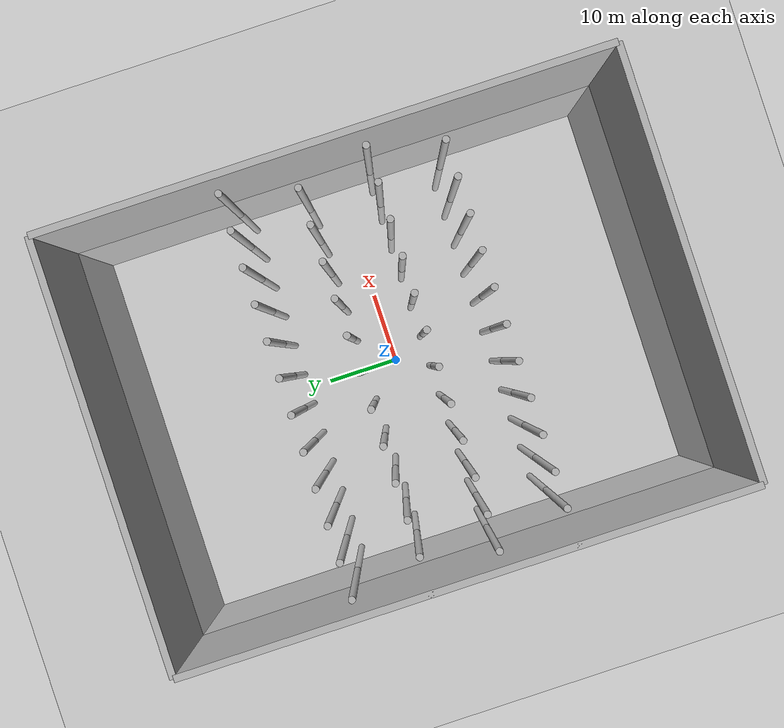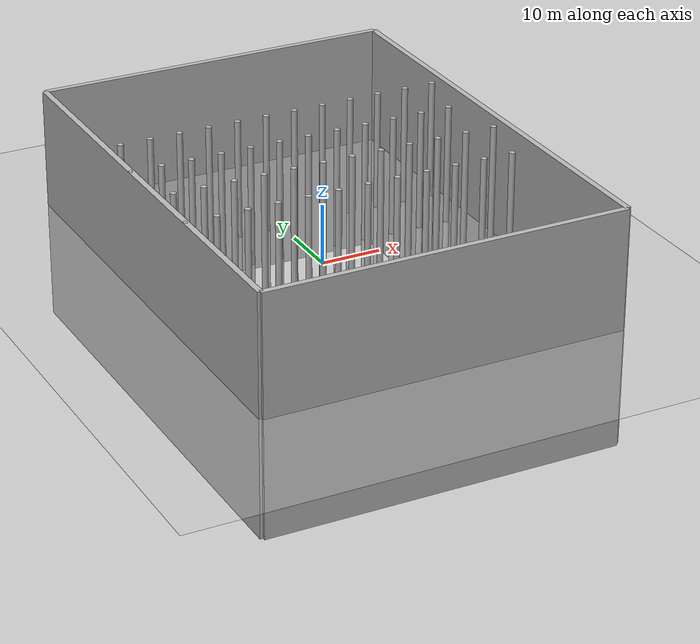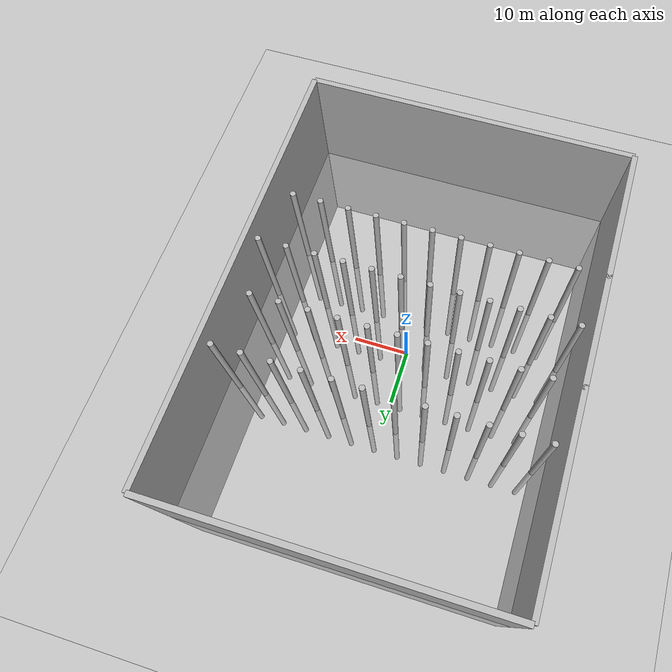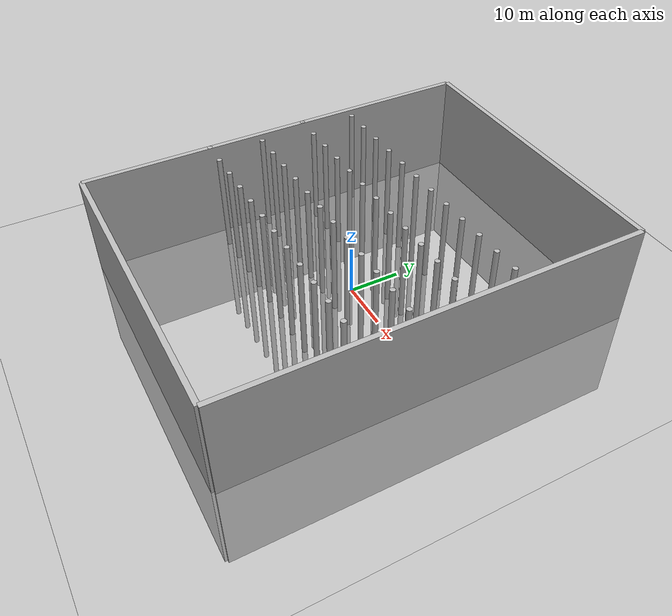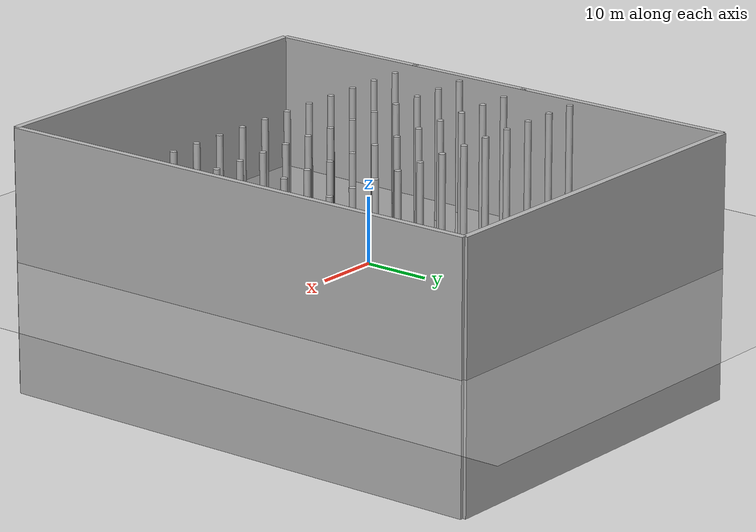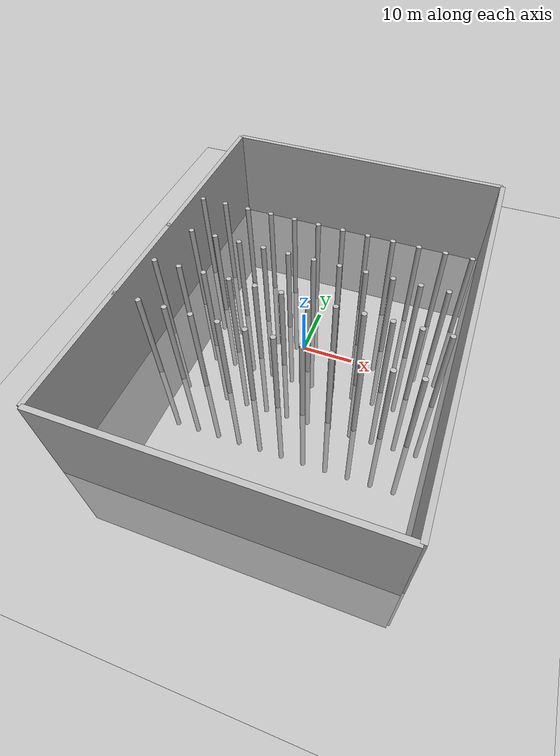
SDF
<?xml version="1.0"?>
<sdf version="1.4">
  <world name="default">
    <include>
      <uri>model://ground_plane</uri>
    </include>
    <include>
      <uri>model://sun</uri>
    </include>
    <scene>
      <shadows>0</shadows>
    </scene>

    <model name='Wall'>
      <static>true</static>
      <link name="wall1">
        <pose>30 0 0 0 0 0 </pose>
        <visual name="visual">
          <geometry>
            <box>
              <size>1 80 40</size>
            </box>
          </geometry>
        </visual>
        <collision name="collision">
          <geometry>
            <box>
              <size>1 80 40</size>
            </box>
          </geometry>
          <max_contacts>10</max_contacts>
        </collision>
      </link>
      <link name="wall2">
        <pose>-30 0 0 0 0 0 </pose>
        <visual name="visual">
          <geometry>
            <box>
              <size>1 80 40</size>
            </box>
          </geometry>
        </visual>
        <collision name="collision">
          <geometry>
            <box>
              <size>1 80 40</size>
            </box>
          </geometry>
          <max_contacts>10</max_contacts>
        </collision>
      </link>
      <link name="wall3">
        <pose>0 -40 0 0 0 1.57 </pose>
        <visual name="visual">
          <geometry>
            <box>
              <size>1 60 40</size>
            </box>
          </geometry>
        </visual>
        <collision name="collision">
          <geometry>
            <box>
              <size>1 60 40</size>
            </box>
          </geometry>
          <max_contacts>10</max_contacts>
        </collision>
      </link>
      <link name="wall4">
        <pose>0 40 0 0 0 1.57 </pose>
        <visual name="visual">
          <geometry>
            <box>
              <size>1 60 40</size>
            </box>
          </geometry>
        </visual>
        <collision name="collision">
          <geometry>
            <box>
              <size>1 60 40</size>
            </box>
          </geometry>
          <max_contacts>10</max_contacts>
        </collision>
      </link>
    </model>

    <model name='Row_of_Poles2'>
      <static>true</static>
            <link name="pole1">
        <pose>-27.5 15 0 0 0 0 </pose>
        <visual name="visual">
          <geometry>
            <cylinder>
              <radius>0.5</radius>
              <length>40</length>
            </cylinder>
          </geometry>
        </visual>
        <collision name="collision">
          <geometry>
            <cylinder>
              <radius>0.5</radius>
              <length>40</length>
            </cylinder>
          </geometry>
          <max_contacts>10</max_contacts>
        </collision>
      </link>
      <link name="pole2">
        <pose>-17.5 15 0 0 0 0 </pose>
        <visual name="visual">
          <geometry>
            <cylinder>
              <radius>0.5</radius>
              <length>40</length>
            </cylinder>
          </geometry>
        </visual>
        <collision name="collision">
          <geometry>
            <cylinder>
              <radius>0.5</radius>
              <length>40</length>
            </cylinder>
          </geometry>
          <max_contacts>10</max_contacts>
        </collision>
      </link>
      <link name="pole3">
        <pose>-7.5 15 0 0 0 0 </pose>
        <visual name="visual">
          <geometry>
            <cylinder>
              <radius>0.5</radius>
              <length>40</length>
            </cylinder>
          </geometry>
        </visual>
        <collision name="collision">
          <geometry>
            <cylinder>
              <radius>0.5</radius>
              <length>40</length>
            </cylinder>
          </geometry>
          <max_contacts>10</max_contacts>
        </collision>
      </link>
      <link name="pole4">
        <pose>2.5 15 0 0 0 0 </pose>
        <visual name="visual">
          <geometry>
            <cylinder>
              <radius>0.5</radius>
              <length>40</length>
            </cylinder>
          </geometry>
        </visual>
        <collision name="collision">
          <geometry>
            <cylinder>
              <radius>0.5</radius>
              <length>40</length>
            </cylinder>
          </geometry>
          <max_contacts>10</max_contacts>
        </collision>
      </link>
      <link name="pole5">
        <pose>12.5 15 0 0 0 0 </pose>
        <visual name="visual">
          <geometry>
            <cylinder>
              <radius>0.5</radius>
              <length>40</length>
            </cylinder>
          </geometry>
        </visual>
        <collision name="collision">
          <geometry>
            <cylinder>
              <radius>0.5</radius>
              <length>40</length>
            </cylinder>
          </geometry>
          <max_contacts>10</max_contacts>
        </collision>
      </link>
      <link name="pole6">
        <pose>22.5 15 0 0 0 0 </pose>
        <visual name="visual">
          <geometry>
            <cylinder>
              <radius>0.5</radius>
              <length>40</length>
            </cylinder>
          </geometry>
        </visual>
        <collision name="collision">
          <geometry>
            <cylinder>
              <radius>0.5</radius>
              <length>40</length>
            </cylinder>
          </geometry>
          <max_contacts>10</max_contacts>
        </collision>
      </link>
      <link name="pole7">
        <pose>27.5 15 0 0 0 0 </pose>
        <visual name="visual">
          <geometry>
            <cylinder>
              <radius>0.5</radius>
              <length>40</length>
            </cylinder>
          </geometry>
        </visual>
        <collision name="collision">
          <geometry>
            <cylinder>
              <radius>0.5</radius>
              <length>40</length>
            </cylinder>
          </geometry>
          <max_contacts>10</max_contacts>
        </collision>
      </link>
      <link name="pole8">
        <pose>-22.5 15 0 0 0 0 </pose>
        <visual name="visual">
          <geometry>
            <cylinder>
              <radius>0.5</radius>
              <length>40</length>
            </cylinder>
          </geometry>
        </visual>
        <collision name="collision">
          <geometry>
            <cylinder>
              <radius>0.5</radius>
              <length>40</length>
            </cylinder>
          </geometry>
          <max_contacts>10</max_contacts>
        </collision>
      </link>
      <link name="pole9">
        <pose>-12.5 15 0 0 0 0 </pose>
        <visual name="visual">
          <geometry>
            <cylinder>
              <radius>0.5</radius>
              <length>40</length>
            </cylinder>
          </geometry>
        </visual>
        <collision name="collision">
          <geometry>
            <cylinder>
              <radius>0.5</radius>
              <length>40</length>
            </cylinder>
          </geometry>
          <max_contacts>10</max_contacts>
        </collision>
      </link>
      <link name="pole10">
        <pose>-2.5 15 0 0 0 0 </pose>
        <visual name="visual">
          <geometry>
            <cylinder>
              <radius>0.5</radius>
              <length>40</length>
            </cylinder>
          </geometry>
        </visual>
        <collision name="collision">
          <geometry>
            <cylinder>
              <radius>0.5</radius>
              <length>40</length>
            </cylinder>
          </geometry>
          <max_contacts>10</max_contacts>
        </collision>
      </link>
      <link name="pole11">
        <pose>7.5 15 0 0 0 0 </pose>
        <visual name="visual">
          <geometry>
            <cylinder>
              <radius>0.5</radius>
              <length>40</length>
            </cylinder>
          </geometry>
        </visual>
        <collision name="collision">
          <geometry>
            <cylinder>
              <radius>0.5</radius>
              <length>40</length>
            </cylinder>
          </geometry>
          <max_contacts>10</max_contacts>
        </collision>
      </link>
      <link name="pole12">
        <pose>17.5 15 0 0 0 0 </pose>
        <visual name="visual">
          <geometry>
            <cylinder>
              <radius>0.5</radius>
              <length>40</length>
            </cylinder>
          </geometry>
        </visual>
        <collision name="collision">
          <geometry>
            <cylinder>
              <radius>0.5</radius>
              <length>40</length>
            </cylinder>
          </geometry>
          <max_contacts>10</max_contacts>
        </collision>
      </link>
    </model>

    <model name='Row_of_Poles3'>
      <static>true</static>
      <link name="pole1">
        <pose>-25 5 0 0 0 0 </pose>
        <visual name="visual">
          <geometry>
            <cylinder>
              <radius>0.5</radius>
              <length>40</length>
            </cylinder>
          </geometry>
        </visual>
        <collision name="collision">
          <geometry>
            <cylinder>
              <radius>0.5</radius>
              <length>40</length>
            </cylinder>
          </geometry>
          <max_contacts>10</max_contacts>
        </collision>
      </link>
      <link name="pole2">
        <pose>-15 5 0 0 0 0 </pose>
        <visual name="visual">
          <geometry>
            <cylinder>
              <radius>0.5</radius>
              <length>40</length>
            </cylinder>
          </geometry>
        </visual>
        <collision name="collision">
          <geometry>
            <cylinder>
              <radius>0.5</radius>
              <length>40</length>
            </cylinder>
          </geometry>
          <max_contacts>10</max_contacts>
        </collision>
      </link>
      <link name="pole3">
        <pose>-5 5 0 0 0 0 </pose>
        <visual name="visual">
          <geometry>
            <cylinder>
              <radius>0.5</radius>
              <length>40</length>
            </cylinder>
          </geometry>
        </visual>
        <collision name="collision">
          <geometry>
            <cylinder>
              <radius>0.5</radius>
              <length>40</length>
            </cylinder>
          </geometry>
          <max_contacts>10</max_contacts>
        </collision>
      </link>
      <link name="pole4">
        <pose>5 5 0 0 0 0 </pose>
        <visual name="visual">
          <geometry>
            <cylinder>
              <radius>0.5</radius>
              <length>40</length>
            </cylinder>
          </geometry>
        </visual>
        <collision name="collision">
          <geometry>
            <cylinder>
              <radius>0.5</radius>
              <length>40</length>
            </cylinder>
          </geometry>
          <max_contacts>10</max_contacts>
        </collision>
      </link>
      <link name="pole5">
        <pose>15 5 0 0 0 0 </pose>
        <visual name="visual">
          <geometry>
            <cylinder>
              <radius>0.5</radius>
              <length>40</length>
            </cylinder>
          </geometry>
        </visual>
        <collision name="collision">
          <geometry>
            <cylinder>
              <radius>0.5</radius>
              <length>40</length>
            </cylinder>
          </geometry>
          <max_contacts>10</max_contacts>
        </collision>
      </link>
      <link name="pole6">
        <pose>25 5 0 0 0 0 </pose>
        <visual name="visual">
          <geometry>
            <cylinder>
              <radius>0.5</radius>
              <length>40</length>
            </cylinder>
          </geometry>
        </visual>
        <collision name="collision">
          <geometry>
            <cylinder>
              <radius>0.5</radius>
              <length>40</length>
            </cylinder>
          </geometry>
          <max_contacts>10</max_contacts>
        </collision>
      </link>
      <link name="pole7">
        <pose>-30 5 0 0 0 0 </pose>
        <visual name="visual">
          <geometry>
            <cylinder>
              <radius>0.5</radius>
              <length>40</length>
            </cylinder>
          </geometry>
        </visual>
        <collision name="collision">
          <geometry>
            <cylinder>
              <radius>0.5</radius>
              <length>40</length>
            </cylinder>
          </geometry>
          <max_contacts>10</max_contacts>
        </collision>
      </link>
      <link name="pole8">
        <pose>-20 5 0 0 0 0 </pose>
        <visual name="visual">
          <geometry>
            <cylinder>
              <radius>0.5</radius>
              <length>40</length>
            </cylinder>
          </geometry>
        </visual>
        <collision name="collision">
          <geometry>
            <cylinder>
              <radius>0.5</radius>
              <length>40</length>
            </cylinder>
          </geometry>
          <max_contacts>10</max_contacts>
        </collision>
      </link>
      <link name="pole9">
        <pose>-10 5 0 0 0 0 </pose>
        <visual name="visual">
          <geometry>
            <cylinder>
              <radius>0.5</radius>
              <length>40</length>
            </cylinder>
          </geometry>
        </visual>
        <collision name="collision">
          <geometry>
            <cylinder>
              <radius>0.5</radius>
              <length>40</length>
            </cylinder>
          </geometry>
          <max_contacts>10</max_contacts>
        </collision>
      </link>
      <link name="pole10">
        <pose>0 5 0 0 0 0 </pose>
        <visual name="visual">
          <geometry>
            <cylinder>
              <radius>0.5</radius>
              <length>40</length>
            </cylinder>
          </geometry>
        </visual>
        <collision name="collision">
          <geometry>
            <cylinder>
              <radius>0.5</radius>
              <length>40</length>
            </cylinder>
          </geometry>
          <max_contacts>10</max_contacts>
        </collision>
      </link>
      <link name="pole11">
        <pose>10 5 0 0 0 0 </pose>
        <visual name="visual">
          <geometry>
            <cylinder>
              <radius>0.5</radius>
              <length>40</length>
            </cylinder>
          </geometry>
        </visual>
        <collision name="collision">
          <geometry>
            <cylinder>
              <radius>0.5</radius>
              <length>40</length>
            </cylinder>
          </geometry>
          <max_contacts>10</max_contacts>
        </collision>
      </link>
      <link name="pole12">
        <pose>20 5 0 0 0 0 </pose>
        <visual name="visual">
          <geometry>
            <cylinder>
              <radius>0.5</radius>
              <length>40</length>
            </cylinder>
          </geometry>
        </visual>
        <collision name="collision">
          <geometry>
            <cylinder>
              <radius>0.5</radius>
              <length>40</length>
            </cylinder>
          </geometry>
          <max_contacts>10</max_contacts>
        </collision>
      </link>
    </model>

    <model name='Row_of_Poles4'>
      <static>true</static>
            <link name="pole1">
        <pose>-27.5 -5 0 0 0 0</pose>
        <visual name="visual">
          <geometry>
            <cylinder>
              <radius>0.5</radius>
              <length>40</length>
            </cylinder>
          </geometry>
        </visual>
        <collision name="collision">
          <geometry>
            <cylinder>
              <radius>0.5</radius>
              <length>40</length>
            </cylinder>
          </geometry>
          <max_contacts>10</max_contacts>
        </collision>
      </link>
      <link name="pole2">
        <pose>-17.5 -5 0 0 0 0</pose>
        <visual name="visual">
          <geometry>
            <cylinder>
              <radius>0.5</radius>
              <length>40</length>
            </cylinder>
          </geometry>
        </visual>
        <collision name="collision">
          <geometry>
            <cylinder>
              <radius>0.5</radius>
              <length>40</length>
            </cylinder>
          </geometry>
          <max_contacts>10</max_contacts>
        </collision>
      </link>
      <link name="pole3">
        <pose>-7.5 -5 0 0 0 0</pose>
        <visual name="visual">
          <geometry>
            <cylinder>
              <radius>0.5</radius>
              <length>40</length>
            </cylinder>
          </geometry>
        </visual>
        <collision name="collision">
          <geometry>
            <cylinder>
              <radius>0.5</radius>
              <length>40</length>
            </cylinder>
          </geometry>
          <max_contacts>10</max_contacts>
        </collision>
      </link>
      <link name="pole4">
        <pose>2.5 -5 0 0 0 0</pose>
        <visual name="visual">
          <geometry>
            <cylinder>
              <radius>0.5</radius>
              <length>40</length>
            </cylinder>
          </geometry>
        </visual>
        <collision name="collision">
          <geometry>
            <cylinder>
              <radius>0.5</radius>
              <length>40</length>
            </cylinder>
          </geometry>
          <max_contacts>10</max_contacts>
        </collision>
      </link>
      <link name="pole5">
        <pose>12.5 -5 0 0 0 0</pose>
        <visual name="visual">
          <geometry>
            <cylinder>
              <radius>0.5</radius>
              <length>40</length>
            </cylinder>
          </geometry>
        </visual>
        <collision name="collision">
          <geometry>
            <cylinder>
              <radius>0.5</radius>
              <length>40</length>
            </cylinder>
          </geometry>
          <max_contacts>10</max_contacts>
        </collision>
      </link>
      <link name="pole6">
        <pose>22.5 -5 0 0 0 0</pose>
        <visual name="visual">
          <geometry>
            <cylinder>
              <radius>0.5</radius>
              <length>40</length>
            </cylinder>
          </geometry>
        </visual>
        <collision name="collision">
          <geometry>
            <cylinder>
              <radius>0.5</radius>
              <length>40</length>
            </cylinder>
          </geometry>
          <max_contacts>10</max_contacts>
        </collision>
      </link>
      <link name="pole7">
        <pose>27.5 -5 0 0 0 0</pose>
        <visual name="visual">
          <geometry>
            <cylinder>
              <radius>0.5</radius>
              <length>40</length>
            </cylinder>
          </geometry>
        </visual>
        <collision name="collision">
          <geometry>
            <cylinder>
              <radius>0.5</radius>
              <length>40</length>
            </cylinder>
          </geometry>
          <max_contacts>10</max_contacts>
        </collision>
      </link>
      <link name="pole8">
        <pose>-22.5 -5 0 0 0 0</pose>
        <visual name="visual">
          <geometry>
            <cylinder>
              <radius>0.5</radius>
              <length>40</length>
            </cylinder>
          </geometry>
        </visual>
        <collision name="collision">
          <geometry>
            <cylinder>
              <radius>0.5</radius>
              <length>40</length>
            </cylinder>
          </geometry>
          <max_contacts>10</max_contacts>
        </collision>
      </link>
      <link name="pole9">
        <pose>-12.5 -5 0 0 0 0</pose>
        <visual name="visual">
          <geometry>
            <cylinder>
              <radius>0.5</radius>
              <length>40</length>
            </cylinder>
          </geometry>
        </visual>
        <collision name="collision">
          <geometry>
            <cylinder>
              <radius>0.5</radius>
              <length>40</length>
            </cylinder>
          </geometry>
          <max_contacts>10</max_contacts>
        </collision>
      </link>
      <link name="pole10">
        <pose>-2.5 -5 0 0 0 0</pose>
        <visual name="visual">
          <geometry>
            <cylinder>
              <radius>0.5</radius>
              <length>40</length>
            </cylinder>
          </geometry>
        </visual>
        <collision name="collision">
          <geometry>
            <cylinder>
              <radius>0.5</radius>
              <length>40</length>
            </cylinder>
          </geometry>
          <max_contacts>10</max_contacts>
        </collision>
      </link>
      <link name="pole11">
        <pose>7.5 -5 0 0 0 0</pose>
        <visual name="visual">
          <geometry>
            <cylinder>
              <radius>0.5</radius>
              <length>40</length>
            </cylinder>
          </geometry>
        </visual>
        <collision name="collision">
          <geometry>
            <cylinder>
              <radius>0.5</radius>
              <length>40</length>
            </cylinder>
          </geometry>
          <max_contacts>10</max_contacts>
        </collision>
      </link>
      <link name="pole12">
        <pose>17.5 -5 0 0 0 0 </pose>
        <visual name="visual">
          <geometry>
            <cylinder>
              <radius>0.5</radius>
              <length>40</length>
            </cylinder>
          </geometry>
        </visual>
        <collision name="collision">
          <geometry>
            <cylinder>
              <radius>0.5</radius>
              <length>40</length>
            </cylinder>
          </geometry>
          <max_contacts>10</max_contacts>
        </collision>
      </link>
    </model>

    <model name='Row_of_Poles5'>
      <static>true</static>
      <link name="pole1">
        <pose>-25 -15 0 0 0 0 </pose>
        <visual name="visual">
          <geometry>
            <cylinder>
              <radius>0.5</radius>
              <length>40</length>
            </cylinder>
          </geometry>
        </visual>
        <collision name="collision">
          <geometry>
            <cylinder>
              <radius>0.5</radius>
              <length>40</length>
            </cylinder>
          </geometry>
          <max_contacts>10</max_contacts>
        </collision>
      </link>
      <link name="pole2">
        <pose>-15 -15 0 0 0 0 </pose>
        <visual name="visual">
          <geometry>
            <cylinder>
              <radius>0.5</radius>
              <length>40</length>
            </cylinder>
          </geometry>
        </visual>
        <collision name="collision">
          <geometry>
            <cylinder>
              <radius>0.5</radius>
              <length>40</length>
            </cylinder>
          </geometry>
          <max_contacts>10</max_contacts>
        </collision>
      </link>
      <link name="pole3">
        <pose>-5 -15 0 0 0 0 </pose>
        <visual name="visual">
          <geometry>
            <cylinder>
              <radius>0.5</radius>
              <length>40</length>
            </cylinder>
          </geometry>
        </visual>
        <collision name="collision">
          <geometry>
            <cylinder>
              <radius>0.5</radius>
              <length>40</length>
            </cylinder>
          </geometry>
          <max_contacts>10</max_contacts>
        </collision>
      </link>
      <link name="pole4">
        <pose>5 -15 0 0 0 0 </pose>
        <visual name="visual">
          <geometry>
            <cylinder>
              <radius>0.5</radius>
              <length>40</length>
            </cylinder>
          </geometry>
        </visual>
        <collision name="collision">
          <geometry>
            <cylinder>
              <radius>0.5</radius>
              <length>40</length>
            </cylinder>
          </geometry>
          <max_contacts>10</max_contacts>
        </collision>
      </link>
      <link name="pole5">
        <pose>15 -15 0 0 0 0 </pose>
        <visual name="visual">
          <geometry>
            <cylinder>
              <radius>0.5</radius>
              <length>40</length>
            </cylinder>
          </geometry>
        </visual>
        <collision name="collision">
          <geometry>
            <cylinder>
              <radius>0.5</radius>
              <length>40</length>
            </cylinder>
          </geometry>
          <max_contacts>10</max_contacts>
        </collision>
      </link>
      <link name="pole6">
        <pose>25 -15 0 0 0 0 </pose>
        <visual name="visual">
          <geometry>
            <cylinder>
              <radius>0.5</radius>
              <length>40</length>
            </cylinder>
          </geometry>
        </visual>
        <collision name="collision">
          <geometry>
            <cylinder>
              <radius>0.5</radius>
              <length>40</length>
            </cylinder>
          </geometry>
          <max_contacts>10</max_contacts>
        </collision>
      </link>
      <link name="pole7">
        <pose>-30 -15 0 0 0 0 </pose>
        <visual name="visual">
          <geometry>
            <cylinder>
              <radius>0.5</radius>
              <length>40</length>
            </cylinder>
          </geometry>
        </visual>
        <collision name="collision">
          <geometry>
            <cylinder>
              <radius>0.5</radius>
              <length>40</length>
            </cylinder>
          </geometry>
          <max_contacts>10</max_contacts>
        </collision>
      </link>
      <link name="pole8">
        <pose>-20 -15 0 0 0 0 </pose>
        <visual name="visual">
          <geometry>
            <cylinder>
              <radius>0.5</radius>
              <length>40</length>
            </cylinder>
          </geometry>
        </visual>
        <collision name="collision">
          <geometry>
            <cylinder>
              <radius>0.5</radius>
              <length>40</length>
            </cylinder>
          </geometry>
          <max_contacts>10</max_contacts>
        </collision>
      </link>
      <link name="pole9">
        <pose>-10 -15 0 0 0 0 </pose>
        <visual name="visual">
          <geometry>
            <cylinder>
              <radius>0.5</radius>
              <length>40</length>
            </cylinder>
          </geometry>
        </visual>
        <collision name="collision">
          <geometry>
            <cylinder>
              <radius>0.5</radius>
              <length>40</length>
            </cylinder>
          </geometry>
          <max_contacts>10</max_contacts>
        </collision>
      </link>
      <link name="pole10">
        <pose>0 -15 0 0 0 0 </pose>
        <visual name="visual">
          <geometry>
            <cylinder>
              <radius>0.5</radius>
              <length>40</length>
            </cylinder>
          </geometry>
        </visual>
        <collision name="collision">
          <geometry>
            <cylinder>
              <radius>0.5</radius>
              <length>40</length>
            </cylinder>
          </geometry>
          <max_contacts>10</max_contacts>
        </collision>
      </link>
      <link name="pole11">
        <pose>10 -15 0 0 0 0 </pose>
        <visual name="visual">
          <geometry>
            <cylinder>
              <radius>0.5</radius>
              <length>40</length>
            </cylinder>
          </geometry>
        </visual>
        <collision name="collision">
          <geometry>
            <cylinder>
              <radius>0.5</radius>
              <length>40</length>
            </cylinder>
          </geometry>
          <max_contacts>10</max_contacts>
        </collision>
      </link>
      <link name="pole12">
        <pose>20 -15 0 0 0 0 </pose>
        <visual name="visual">
          <geometry>
            <cylinder>
              <radius>0.5</radius>
              <length>40</length>
            </cylinder>
          </geometry>
        </visual>
        <collision name="collision">
          <geometry>
            <cylinder>
              <radius>0.5</radius>
              <length>40</length>
            </cylinder>
          </geometry>
          <max_contacts>10</max_contacts>
        </collision>
      </link>
    </model>

    <!-- Physics settings -->
    <physics name='default_physics' default='0' type='ode'>
      <max_step_size>0.001</max_step_size>
      <real_time_factor>.25</real_time_factor>
      <real_time_update_rate>250</real_time_update_rate>
    </physics>

    <gui>
      <camera name="user_camera">
          <pose>-20 -10 100 0 1.4 0</pose>
      </camera>
    </gui>
  </world>
</sdf>
